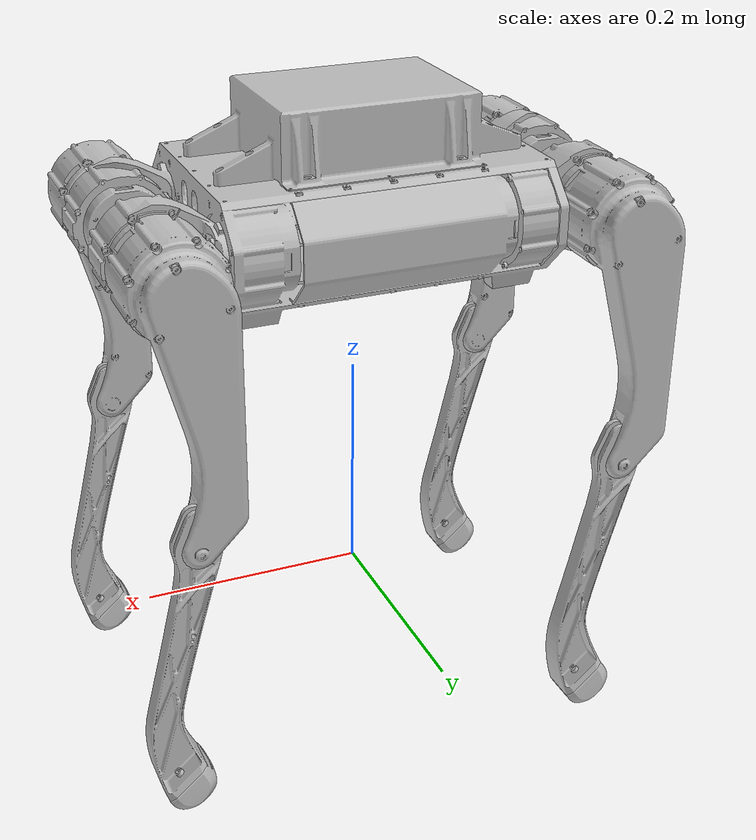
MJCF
<?xml version='1.0' encoding='utf-8'?>
<mujoco model="sh_dog">
  <compiler angle="radian" meshdir="../raw/meshes" autolimits="true" />
  <option timestep="0.005" integrator="RK4" />
  <default>
    <geom friction="0.8 0.02 0.001" condim="3" />
    <default class="visual">
      <geom contype="0" conaffinity="0" group="2" />
    </default>
    <default class="collision">
      <geom contype="1" conaffinity="2" group="3" />
    </default>
  </default>
  <asset>
    <mesh name="base_link" file="base_link.STL" />
    <mesh name="fl_abad_link" file="fl_abad_link.STL" />
    <mesh name="fl_hip_link" file="fl_hip_link.STL" />
    <mesh name="fl_knee_link" file="fl_knee_link.STL" />
    <mesh name="fl_foot_link" file="fl_foot_link.STL" />
    <mesh name="fr_abad_link" file="fr_abad_link.STL" />
    <mesh name="fr_hip_link" file="fr_hip_link.STL" />
    <mesh name="fr_knee_link" file="fr_knee_link.STL" />
    <mesh name="fr_foot_link" file="fr_foot_link.STL" />
    <mesh name="rl_abad_link" file="rl_abad_link.STL" />
    <mesh name="rl_hip_link" file="rl_hip_link.STL" />
    <mesh name="rl_knee_link" file="rl_knee_link.STL" />
    <mesh name="rl_foot_link" file="rl_foot_link.STL" />
    <mesh name="rr_abad_link" file="rr_abad_link.STL" />
    <mesh name="rr_hip_link" file="rr_hip_link.STL" />
    <mesh name="rr_knee_link" file="rr_knee_link.STL" />
    <mesh name="rr_foot_link" file="rr_foot_link.STL" />
  </asset>
  <worldbody>
    <body name="base_link" pos="0 0 0.4">
      <freejoint name="floating_base" />
      <inertial pos="-0.00049167 6.7769E-09 -0.046567" mass="6.9493" fullinertia="0.012221 0.019119 0.025686 -6.134E-09 -2.1399E-05 -7.2605E-10" />
      <geom pos="0 0 0" type="mesh" mesh="base_link" class="visual" rgba="0.75294 0.75294 0.75294 1" />
      <geom pos="0 0 -0.03" name="base_link_collision_0" class="collision" type="box" size="0.175 0.08 0.0625" />
      <geom pos="0.215 0 -0.025" name="base_link_collision_1" class="collision" type="box" size="0.045 0.095 0.05" />
      <geom pos="-0.215 0 -0.025" name="base_link_collision_2" class="collision" type="box" size="0.045 0.095 0.05" />
      <body name="fl_abad_link" pos="0.13323 0.071 -0.050115">
        <joint name="fl_abad_joint" type="hinge" axis="1 0 0" range="-0.79 0.79" armature="0.012" />
        <inertial pos="0.042078 -0.024479 6.3482E-08" mass="0.92886" fullinertia="0.00049446 0.00075143 0.0005481 5.9311E-06 1.2866E-08 6.7955E-10" />
        <geom pos="0 0 0" type="mesh" mesh="fl_abad_link" class="visual" rgba="0.75294 0.75294 0.75294 1" />
        <geom pos="0.05877 -0.01225 0" quat="0.707106781188 0 0.707106781185 0" name="fl_abad_link_collision_0" class="collision" type="cylinder" size="0.046 0.04" />
        <geom pos="-0.015 -0.01225 0" quat="0.707106781188 0 0.707106781185 0" name="fl_abad_link_collision_1" class="collision" type="cylinder" size="0.041 0.03" />
        <body name="fl_hip_link" pos="0.05877 -0.01225 0">
          <joint name="fl_hip_joint" type="hinge" axis="0 1 0" range="-1.74 3.31" armature="0.012" />
          <inertial pos="-0.0029513 0.055351 -0.026412" mass="1.2575" fullinertia="0.0021493 0.0024611 0.00057093 4.4096E-07 -0.00012108 9.4296E-06" />
          <geom pos="0 0 0" type="mesh" mesh="fl_hip_link" class="visual" rgba="0.75294 0.75294 0.75294 1" />
          <geom pos="0 0.05 0" quat="0.707106781188 0.707106781185 0 0" name="fl_hip_link_collision_0" class="collision" type="cylinder" size="0.04 0.045" />
          <geom pos="-0.005 0.08215 -0.135" name="fl_hip_link_collision_1" class="collision" type="box" size="0.035 0.017 0.09" />
          <body name="fl_knee_link" pos="0 0.08215 -0.213">
            <joint name="fl_knee_joint" type="hinge" axis="0 1 0" range="-2.67 -0.79" armature="0.048" />
            <inertial pos="0.015776 3.4272E-08 -0.094656" mass="0.16891" fullinertia="0.0011426 0.0011885 5.6498E-05 2.4462E-10 0.00018241 5.5669E-10" />
            <geom pos="0 0 0" type="mesh" mesh="fl_knee_link" class="visual" rgba="0.75294 0.75294 0.75294 1" />
            <geom pos="0.0075 0 -0.06" quat="0.998078615602 0 -0.0619602863004 0" name="fl_knee_link_collision_0" class="collision" type="cylinder" size="0.014 0.065" />
            <geom pos="0.028 0 -0.17" quat="0.997888243671 0 -0.0649542388348 0" name="fl_knee_link_collision_1" class="collision" type="cylinder" size="0.018 0.075" />
            <body name="fl_foot_link" pos="0.023578 0 -0.225">
              <inertial pos="-0.0069127 -2.3801E-06 -0.0065607" mass="0.038902" fullinertia="9.5493E-06 7.8792E-06 1.0019E-05 -2.2414E-10 1.8442E-06 -2.2924E-10" />
              <geom pos="0 0 0" type="mesh" mesh="fl_foot_link" class="visual" rgba="0.75294 0.75294 0.75294 1" />
              <geom pos="-0.0045 0 -0.005" name="fl_foot_link_collision_0" class="collision" type="sphere" size="0.0225" />
            </body>
          </body>
        </body>
      </body>
      <body name="fr_abad_link" pos="0.13323 -0.071 -0.050115">
        <joint name="fr_abad_joint" type="hinge" axis="1 0 0" range="-0.79 0.79" armature="0.012" />
        <inertial pos="0.042078 0.024479 -6.3482E-08" mass="0.92886" fullinertia="0.00049446 0.00075143 0.0005481 -5.9311E-06 -1.2866E-08 6.7955E-10" />
        <geom pos="0 0 0" type="mesh" mesh="fr_abad_link" class="visual" rgba="0.75294 0.75294 0.75294 1" />
        <geom pos="0.05877 0.01225 0" quat="0.707106781188 0 0.707106781185 0" name="fr_abad_link_collision_0" class="collision" type="cylinder" size="0.046 0.04" />
        <geom pos="-0.015 0.01225 0" quat="0.707106781188 0 0.707106781185 0" name="fr_abad_link_collision_1" class="collision" type="cylinder" size="0.041 0.03" />
        <body name="fr_hip_link" pos="0.05877 0.01225 0">
          <joint name="fr_hip_joint" type="hinge" axis="0 1 0" range="-1.74 3.31" armature="0.012" />
          <inertial pos="-0.00295127600653783 -0.0553505296691562 -0.0264119215015597" mass="1.25749406115707" fullinertia="0.00214930268727188 0.0024610842094822 0.000570937306967131 -4.40008235011207E-07 -0.000121089509845766 -9.42818653322951E-06" />
          <geom pos="0 0 0" type="mesh" mesh="fr_hip_link" class="visual" rgba="0.752941176470588 0.752941176470588 0.752941176470588 1" />
          <geom pos="0 -0.05 0" quat="0.707106781188 0.707106781185 0 0" name="fr_hip_link_collision_0" class="collision" type="cylinder" size="0.04 0.045" />
          <geom pos="-0.005 -0.08215 -0.135" name="fr_hip_link_collision_1" class="collision" type="box" size="0.035 0.017 0.09" />
          <body name="fr_knee_link" pos="0 -0.08215 -0.213">
            <joint name="fr_knee_joint" type="hinge" axis="0 1 0" range="-2.67 -0.79" armature="0.048" />
            <inertial pos="0.0157755275951559 3.42715062162657E-08 -0.0946563799349887" mass="0.168909137591324" fullinertia="0.00114264801809999 0.00118852208037432 5.64976757542647E-05 2.4461869443836E-10 0.000182407238717794 5.5668564448487E-10" />
            <geom pos="0 0 0" type="mesh" mesh="fr_knee_link" class="visual" rgba="0.752941176470588 0.752941176470588 0.752941176470588 1" />
            <geom pos="0.0075 0 -0.06" quat="0.998078615602 0 -0.0619602863004 0" name="fr_knee_link_collision_0" class="collision" type="cylinder" size="0.014 0.065" />
            <geom pos="0.028 0 -0.17" quat="0.997888243671 0 -0.0649542388348 0" name="fr_knee_link_collision_1" class="collision" type="cylinder" size="0.018 0.075" />
            <body name="fr_foot_link" pos="0.022 0 -0.225">
              <inertial pos="-0.00533475077061957 -1.79093260405105E-06 -0.00656074867502143" mass="0.0389023220231465" fullinertia="9.54931281293162E-06 7.87920842448453E-06 1.00191527344223E-05 -2.24143885745597E-10 1.84420622702918E-06 -2.29243200516718E-10" />
              <geom pos="0 0 0" type="mesh" mesh="fr_foot_link" class="visual" rgba="0.752941176470588 0.752941176470588 0.752941176470588 1" />
              <geom pos="-0.0045 0 -0.005" name="fr_foot_link_collision_0" class="collision" type="sphere" size="0.0225" />
            </body>
          </body>
        </body>
      </body>
      <body name="rl_abad_link" pos="-0.13323 0.071 -0.050115">
        <joint name="rl_abad_joint" type="hinge" axis="1 0 0" range="-0.79 0.79" armature="0.012" />
        <inertial pos="-0.0420781692531116 -0.024478770162302 -6.34093414997317E-08" mass="0.928856367851297" fullinertia="0.000494458255829646 0.000751427821800478 0.000548097549898436 -5.93109415377525E-06 1.28644275061908E-08 -6.78613492704525E-10" />
        <geom pos="0 0 0" type="mesh" mesh="rl_abad_link" class="visual" rgba="0.752941176470588 0.752941176470588 0.752941176470588 1" />
        <geom pos="-0.05877 -0.01225 0" quat="0.707106781188 0 0.707106781185 0" name="rl_abad_link_collision_0" class="collision" type="cylinder" size="0.046 0.04" />
        <geom pos="0.015 -0.01225 0" quat="0.707106781188 0 0.707106781185 0" name="rl_abad_link_collision_1" class="collision" type="cylinder" size="0.041 0.03" />
        <body name="rl_hip_link" pos="-0.05877 -0.01225 0">
          <joint name="rl_hip_joint" type="hinge" axis="0 1 0" range="-1.74 3.31" armature="0.012" />
          <inertial pos="-0.00295127219985069 0.0553508012651617 -0.0264119853083999" mass="1.2575062472706" fullinertia="0.002149309498134 0.00246108793182743 0.000570934023383745 4.40956484448867E-07 -0.000121084848677264 9.4296030704541E-06" />
          <geom pos="0 0 0" type="mesh" mesh="rl_hip_link" class="visual" rgba="0.752941176470588 0.752941176470588 0.752941176470588 1" />
          <geom pos="0 0.05 0" quat="0.707106781188 0.707106781185 0 0" name="rl_hip_link_collision_0" class="collision" type="cylinder" size="0.04 0.045" />
          <geom pos="-0.005 0.08215 -0.135" name="rl_hip_link_collision_1" class="collision" type="box" size="0.035 0.017 0.09" />
          <body name="rl_knee_link" pos="0 0.08215 -0.213">
            <joint name="rl_knee_joint" type="hinge" axis="0 1 0" range="-2.67 -0.79" armature="0.048" />
            <inertial pos="0.0157755275951558 3.42715063827992E-08 -0.0946563799349867" mass="0.168909137591316" fullinertia="0.00114264801809902 0.00118852208035357 5.64976757319342E-05 2.44618692327364E-10 0.000182407238715603 5.56685649036167E-10" />
            <geom pos="0 0 0" type="mesh" mesh="rl_knee_link" class="visual" rgba="0.752941176470588 0.752941176470588 0.752941176470588 1" />
            <geom pos="0.0075 0 -0.06" quat="0.998078615602 0 -0.0619602863004 0" name="rl_knee_link_collision_0" class="collision" type="cylinder" size="0.014 0.065" />
            <geom pos="0.028 0 -0.17" quat="0.997888243671 0 -0.0649542388348 0" name="rl_knee_link_collision_1" class="collision" type="cylinder" size="0.018 0.075" />
            <body name="rl_foot_link" pos="0.022 0 -0.225">
              <inertial pos="-0.00566277667023726 -2.38009014508211E-06 -0.00693809930669181" mass="0.0389023220231459" fullinertia="9.5493128129314E-06 7.87920842448442E-06 1.0019152734422E-05 -2.24143885796009E-10 1.84420622702916E-06 -2.29243200429862E-10" />
              <geom pos="0 0 0" type="mesh" mesh="rl_foot_link" class="visual" rgba="0.752941176470588 0.752941176470588 0.752941176470588 1" />
              <geom pos="-0.0045 0 -0.005" name="rl_foot_link_collision_0" class="collision" type="sphere" size="0.0225" />
            </body>
          </body>
        </body>
      </body>
      <body name="rr_abad_link" pos="-0.13323 -0.071 -0.050115">
        <joint name="rr_abad_joint" type="hinge" axis="1 0 0" range="-0.79 0.79" armature="0.012" />
        <inertial pos="-0.0420781692973412 0.0244787701898436 6.34871614377253E-08" mass="0.928856366079835" fullinertia="0.000494458255385036 0.000751427819863049 0.000548097550476743 5.93109447406546E-06 -1.2865456411775E-08 -6.79641783786189E-10" />
        <geom pos="0 0 0" type="mesh" mesh="rr_abad_link" class="visual" rgba="0.752941176470588 0.752941176470588 0.752941176470588 1" />
        <geom pos="-0.05877 0.01225 0" quat="0.707106781188 0 0.707106781185 0" name="rr_abad_link_collision_0" class="collision" type="cylinder" size="0.046 0.04" />
        <geom pos="0.015 0.01225 0" quat="0.707106781188 0 0.707106781185 0" name="rr_abad_link_collision_1" class="collision" type="cylinder" size="0.041 0.03" />
        <body name="rr_hip_link" pos="-0.05877 0.01225 0">
          <joint name="rr_hip_joint" type="hinge" axis="0 1 0" range="-1.74 3.31" armature="0.012" />
          <inertial pos="-0.00295127679931295 -0.055350529729996 -0.026411921870828" mass="1.25749406287706" fullinertia="0.00214930268681864 0.00246108420957282 0.000570937307193574 -4.39987018540022E-07 -0.000121089510032065 -9.42817590134888E-06" />
          <geom pos="0 0 0" type="mesh" mesh="rr_hip_link" class="visual" rgba="0.752941176470588 0.752941176470588 0.752941176470588 1" />
          <geom pos="0 -0.05 0" quat="0.707106781188 0.707106781185 0 0" name="rr_hip_link_collision_0" class="collision" type="cylinder" size="0.04 0.045" />
          <geom pos="-0.005 -0.08215 -0.135" name="rr_hip_link_collision_1" class="collision" type="box" size="0.035 0.017 0.09" />
          <body name="rr_knee_link" pos="0 -0.08215 -0.213">
            <joint name="rr_knee_joint" type="hinge" axis="0 1 0" range="-2.67 -0.79" armature="0.048" />
            <inertial pos="0.0157755275951563 3.4271506070549E-08 -0.0946563799349878" mass="0.168909137591319" fullinertia="0.00114264801809904 0.00118852208034887 5.64976757281815E-05 2.44618693892352E-10 0.000182407238718271 5.56685644110282E-10" />
            <geom pos="0 0 0" type="mesh" mesh="rr_knee_link" class="visual" rgba="0.752941176470588 0.752941176470588 0.752941176470588 1" />
            <geom pos="0.0075 0 -0.06" quat="0.998078615602 0 -0.0619602863004 0" name="rr_knee_link_collision_0" class="collision" type="cylinder" size="0.014 0.065" />
            <geom pos="0.028 0 -0.17" quat="0.997888243671 0 -0.0649542388348 0" name="rr_knee_link_collision_1" class="collision" type="cylinder" size="0.018 0.075" />
            <body name="rr_foot_link" pos="0.022 0 -0.225">
              <inertial pos="-0.00566277667054906 -1.79093222103799E-06 -0.0069380993062424" mass="0.0389023220259562" fullinertia="9.54931281301923E-06 7.87920842474891E-06 1.00191527347673E-05 -2.2414373730689E-10 1.8442062269997E-06 -2.29243183988196E-10" />
              <geom pos="0 0 0" type="mesh" mesh="rr_foot_link" class="visual" rgba="0.752941176470588 0.752941176470588 0.752941176470588 1" />
              <geom pos="-0.0045 0 -0.005" name="rr_foot_link_collision_0" class="collision" type="sphere" size="0.0225" />
            </body>
          </body>
        </body>
      </body>
    </body>
  </worldbody>
  <actuator>
    <motor name="fl_abad_joint" joint="fl_abad_joint" ctrllimited="true" ctrlrange="-32.4 32.4" />
    <motor name="fl_hip_joint" joint="fl_hip_joint" ctrllimited="true" ctrlrange="-32.4 32.4" />
    <motor name="fl_knee_joint" joint="fl_knee_joint" ctrllimited="true" ctrlrange="-64.8 64.8" />
    <motor name="fr_abad_joint" joint="fr_abad_joint" ctrllimited="true" ctrlrange="-32.4 32.4" />
    <motor name="fr_hip_joint" joint="fr_hip_joint" ctrllimited="true" ctrlrange="-32.4 32.4" />
    <motor name="fr_knee_joint" joint="fr_knee_joint" ctrllimited="true" ctrlrange="-64.8 64.8" />
    <motor name="rl_abad_joint" joint="rl_abad_joint" ctrllimited="true" ctrlrange="-32.4 32.4" />
    <motor name="rl_hip_joint" joint="rl_hip_joint" ctrllimited="true" ctrlrange="-32.4 32.4" />
    <motor name="rl_knee_joint" joint="rl_knee_joint" ctrllimited="true" ctrlrange="-64.8 64.8" />
    <motor name="rr_abad_joint" joint="rr_abad_joint" ctrllimited="true" ctrlrange="-32.4 32.4" />
    <motor name="rr_hip_joint" joint="rr_hip_joint" ctrllimited="true" ctrlrange="-32.4 32.4" />
    <motor name="rr_knee_joint" joint="rr_knee_joint" ctrllimited="true" ctrlrange="-64.8 64.8" />
  </actuator>
</mujoco>
